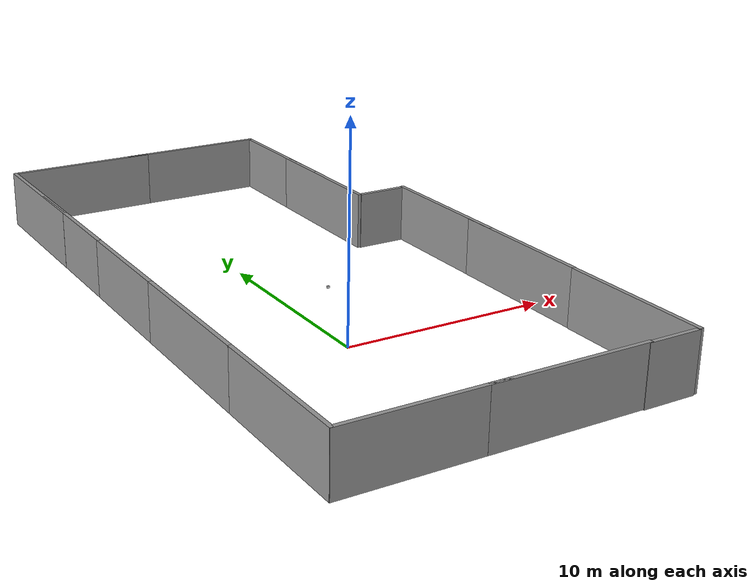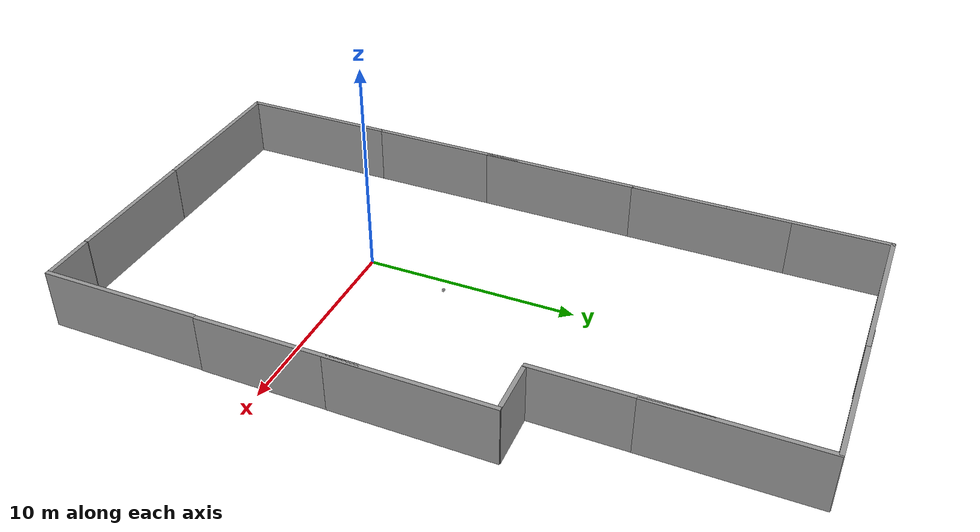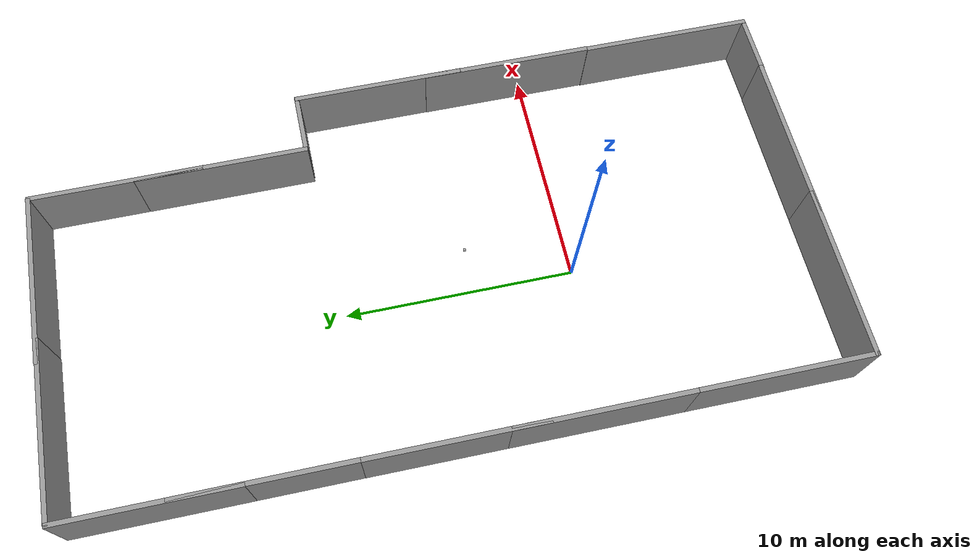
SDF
<sdf version="1.7">
 <world name="default">
  <gravity>0 0 -9.8</gravity>
  <physics name="default_physics" default="0" type="ode">
   <max_step_size>0.001</max_step_size>
   <real_time_factor>1</real_time_factor>
   <real_time_update_rate>1000</real_time_update_rate>
  </physics>
  <plugin name="box_spawner_plugin" filename="libbox_spawner_plugin.so"/>
  <plugin name="attach_detach_plugin" filename="libattach_detach.so"/>
  <light name="Warehouse_CeilingLight_003" type="point">
   <pose>0 0 9 0 -0 0</pose>
   <diffuse>0.5 0.5 0.5 1</diffuse>
   <specular>0.2 0.2 0.2 1</specular>
   <attenuation>
    <range>80</range>
    <constant>0.3</constant>
    <linear>0.01</linear>
    <quadratic>0.001</quadratic>
   </attenuation>
   <direction>0.1 0.1 -1</direction>
   <spot><inner_angle>0</inner_angle><outer_angle>0</outer_angle><falloff>0</falloff></spot>
  </light>
  <magnetic_field>6e-06 2.3e-05 -4.2e-05</magnetic_field>
  <atmosphere type="adiabatic"/>
  <scene><ambient>0.4 0.4 0.4 1</ambient><background>0.7 0.7 0.7 1</background><shadows>1</shadows></scene>
  <audio><device>default</device></audio>
  <spherical_coordinates>
   <surface_model>EARTH_WGS84</surface_model>
   <latitude_deg>0</latitude_deg>
   <longitude_deg>0</longitude_deg>
   <elevation>0</elevation>
   <heading_deg>0</heading_deg>
  </spherical_coordinates>
  <model name="grey_wall_0">
   <static>1</static>
   <link name="link">
    <pose>0 0 1.4 0 -0 0</pose>
    <collision name="collision"><geometry><box><size>7.5 0.2 2.8</size></box></geometry></collision>
    <visual name="visual">
     <cast_shadows>0</cast_shadows>
     <geometry><box><size>7.5 0.2 2.8</size></box></geometry>
     <material>
      <script>
       <uri>model://grey_wall/materials/scripts</uri>
       <uri>model://grey_wall/materials/textures</uri>
       <name>vrc/grey_wall</name>
      </script>
     </material>
    </visual>
   </link>
   <pose>9.46506 -6.66729 0 0 0 -1.57228</pose>
  </model>
  <model name="grey_wall_0_clone">
   <static>1</static>
   <link name="link">
    <pose>0 0 1.4 0 -0 0</pose>
    <collision name="collision"><geometry><box><size>7.5 0.2 2.8</size></box></geometry></collision>
    <visual name="visual">
     <cast_shadows>0</cast_shadows>
     <geometry><box><size>7.5 0.2 2.8</size></box></geometry>
     <material>
      <script>
       <uri>model://grey_wall/materials/scripts</uri>
       <uri>model://grey_wall/materials/textures</uri>
       <name>vrc/grey_wall</name>
      </script>
     </material>
    </visual>
   </link>
   <pose>9.50251 0.819731 0 0 0 -1.57228</pose>
  </model>
  <model name="grey_wall_0_clone_0">
   <static>1</static>
   <link name="link">
    <pose>0 0 1.4 0 -0 0</pose>
    <collision name="collision"><geometry><box><size>7.5 0.2 2.8</size></box></geometry></collision>
    <visual name="visual">
     <cast_shadows>0</cast_shadows>
     <geometry><box><size>7.5 0.2 2.8</size></box></geometry>
     <material>
      <script>
       <uri>model://grey_wall/materials/scripts</uri>
       <uri>model://grey_wall/materials/textures</uri>
       <name>vrc/grey_wall</name>
      </script>
     </material>
    </visual>
   </link>
   <pose>9.52214 6.71138 0 0 0 -1.57228</pose>
  </model>
  <model name="grey_wall_clone">
   <static>1</static>
   <link name="link">
    <pose>0 0 1.4 0 -0 0</pose>
    <collision name="collision"><geometry><box><size>7.5 0.2 2.8</size></box></geometry></collision>
    <visual name="visual">
     <cast_shadows>0</cast_shadows>
     <geometry><box><size>7.5 0.2 2.8</size></box></geometry>
     <material>
      <script>
       <uri>model://grey_wall/materials/scripts</uri>
       <uri>model://grey_wall/materials/textures</uri>
       <name>vrc/grey_wall</name>
      </script>
     </material>
    </visual>
   </link>
   <pose>3.20261 22.2565 0 0 -0 0</pose>
  </model>
  <model name="grey_wall_clone_0">
   <static>1</static>
   <link name="link">
    <pose>0 0 1.4 0 -0 0</pose>
    <collision name="collision"><geometry><box><size>7.5 0.2 2.8</size></box></geometry></collision>
    <visual name="visual">
     <cast_shadows>0</cast_shadows>
     <geometry><box><size>7.5 0.2 2.8</size></box></geometry>
     <material>
      <script>
       <uri>model://grey_wall/materials/scripts</uri>
       <uri>model://grey_wall/materials/textures</uri>
       <name>vrc/grey_wall</name>
      </script>
     </material>
    </visual>
   </link>
   <pose>-3.18617 22.2381 0 0 -0 0</pose>
  </model>
  <model name="grey_wall_clone_1">
   <static>1</static>
   <link name="link">
    <pose>0 0 1.4 0 -0 0</pose>
    <collision name="collision"><geometry><box><size>7.5 0.2 2.8</size></box></geometry></collision>
    <visual name="visual">
     <cast_shadows>0</cast_shadows>
     <geometry><box><size>7.5 0.2 2.8</size></box></geometry>
     <material>
      <script>
       <uri>model://grey_wall/materials/scripts</uri>
       <uri>model://grey_wall/materials/textures</uri>
       <name>vrc/grey_wall</name>
      </script>
     </material>
    </visual>
   </link>
   <pose>3.23489 -10.3239 0 0 -0 0</pose>
  </model>
  <model name="grey_wall_clone_2">
   <static>1</static>
   <link name="link">
    <pose>0 0 1.4 0 -0 0</pose>
    <collision name="collision"><geometry><box><size>7.5 0.2 2.8</size></box></geometry></collision>
    <visual name="visual">
     <cast_shadows>0</cast_shadows>
     <geometry><box><size>7.5 0.2 2.8</size></box></geometry>
     <material>
      <script>
       <uri>model://grey_wall/materials/scripts</uri>
       <uri>model://grey_wall/materials/textures</uri>
       <name>vrc/grey_wall</name>
      </script>
     </material>
    </visual>
   </link>
   <pose>-3.27808 -10.3208 0 0 -0 0</pose>
  </model>
  <model name="grey_wall_0_clone_1">
   <static>1</static>
   <link name="link">
    <pose>0 0 1.4 0 -0 0</pose>
    <collision name="collision"><geometry><box><size>7.5 0.2 2.8</size></box></geometry></collision>
    <visual name="visual">
     <cast_shadows>0</cast_shadows>
     <geometry><box><size>7.5 0.2 2.8</size></box></geometry>
     <material>
      <script>
       <uri>model://grey_wall/materials/scripts</uri>
       <uri>model://grey_wall/materials/textures</uri>
       <name>vrc/grey_wall</name>
      </script>
     </material>
    </visual>
   </link>
   <pose>-6.93259 -6.6497 0 0 0 -1.57228</pose>
  </model>
  <model name="grey_wall_0_clone_2">
   <static>1</static>
   <link name="link">
    <pose>0 0 1.4 0 -0 0</pose>
    <collision name="collision"><geometry><box><size>7.5 0.2 2.8</size></box></geometry></collision>
    <visual name="visual">
     <cast_shadows>0</cast_shadows>
     <geometry><box><size>7.5 0.2 2.8</size></box></geometry>
     <material>
      <script>
       <uri>model://grey_wall/materials/scripts</uri>
       <uri>model://grey_wall/materials/textures</uri>
       <name>vrc/grey_wall</name>
      </script>
     </material>
    </visual>
   </link>
   <pose>-6.9218 0.784813 0 0 0 -1.57228</pose>
  </model>
  <model name="grey_wall_0_clone_3">
   <static>1</static>
   <link name="link">
    <pose>0 0 1.4 0 -0 0</pose>
    <collision name="collision"><geometry><box><size>7.5 0.2 2.8</size></box></geometry></collision>
    <visual name="visual">
     <cast_shadows>0</cast_shadows>
     <geometry><box><size>7.5 0.2 2.8</size></box></geometry>
     <material>
      <script>
       <uri>model://grey_wall/materials/scripts</uri>
       <uri>model://grey_wall/materials/textures</uri>
       <name>vrc/grey_wall</name>
      </script>
     </material>
    </visual>
   </link>
   <pose>-6.91099 6.67572 0 0 0 -1.57228</pose>
  </model>
  <light name="Warehouse_CeilingLight_003_clone" type="point">
   <pose>-0.883526 26.9964 9 0 -0 0</pose>
   <diffuse>0.5 0.5 0.5 1</diffuse>
   <specular>0.2 0.2 0.2 1</specular>
   <direction>0.099015 0.099015 -0.990148</direction>
   <attenuation>
    <range>80</range>
    <constant>0.3</constant>
    <linear>0.01</linear>
    <quadratic>0.001</quadratic>
   </attenuation>
   <spot><inner_angle>0</inner_angle><outer_angle>0</outer_angle><falloff>0</falloff></spot>
  </light>
  <model name="grey_wall_clone_clone">
   <static>1</static>
   <link name="link">
    <pose>0 0 1.4 0 -0 0</pose>
    <collision name="collision"><geometry><box><size>7.5 0.2 2.8</size></box></geometry></collision>
    <visual name="visual">
     <cast_shadows>0</cast_shadows>
     <geometry><box><size>7.5 0.2 2.8</size></box></geometry>
     <material>
      <script>
       <uri>model://grey_wall/materials/scripts</uri>
       <uri>model://grey_wall/materials/textures</uri>
       <name>vrc/grey_wall</name>
      </script>
     </material>
    </visual>
   </link>
   <pose>6.92087 14.0395 0 0 -0 1.5708</pose>
  </model>
  <model name="grey_wall_clone_clone_clone">
   <static>1</static>
   <link name="link">
    <pose>0 0 1.4 0 -0 0</pose>
    <collision name="collision"><geometry><box><size>7.5 0.2 2.8</size></box></geometry></collision>
    <visual name="visual">
     <cast_shadows>0</cast_shadows>
     <geometry><box><size>7.5 0.2 2.8</size></box></geometry>
     <material>
      <script>
       <uri>model://grey_wall/materials/scripts</uri>
       <uri>model://grey_wall/materials/textures</uri>
       <name>vrc/grey_wall</name>
      </script>
     </material>
    </visual>
   </link>
   <pose>6.92651 18.5783 0 0 -0 1.5708</pose>
  </model>
  <model name="grey_wall_clone_clone_clone_0">
   <static>1</static>
   <link name="link">
    <pose>0 0 1.4 0 -0 0</pose>
    <collision name="collision"><geometry><box><size>7.5 0.2 2.8</size></box></geometry></collision>
    <visual name="visual">
     <cast_shadows>0</cast_shadows>
     <geometry><box><size>7.5 0.2 2.8</size></box></geometry>
     <material>
      <script>
       <uri>model://grey_wall/materials/scripts</uri>
       <uri>model://grey_wall/materials/textures</uri>
       <name>vrc/grey_wall</name>
      </script>
     </material>
    </visual>
   </link>
   <pose>-6.90164 14.0783 0 0 -0 1.5708</pose>
  </model>
  <model name="grey_wall_clone_clone_clone_1">
   <static>1</static>
   <link name="link">
    <pose>0 0 1.4 0 -0 0</pose>
    <collision name="collision"><geometry><box><size>7.5 0.2 2.8</size></box></geometry></collision>
    <visual name="visual">
     <cast_shadows>0</cast_shadows>
     <geometry><box><size>7.5 0.2 2.8</size></box></geometry>
     <material>
      <script>
       <uri>model://grey_wall/materials/scripts</uri>
       <uri>model://grey_wall/materials/textures</uri>
       <name>vrc/grey_wall</name>
      </script>
     </material>
    </visual>
   </link>
   <pose>-6.90394 18.5733 0 0 -0 1.5708</pose>
  </model>
  <model name="grey_wall_clone_4_clone_0_clone_clone_0_clone">
   <link name="link">
    <pose>2.30599 -0.1067 1.34342 0 -0 0</pose>
    <inertial>
     <inertia><ixx>0</ixx><ixy>0</ixy><ixz>0</ixz><iyy>0</iyy><iyz>0</iyz><izz>0</izz></inertia>
     <mass>0</mass>
    </inertial>
    <visual name="visual">
     <cast_shadows>0</cast_shadows>
     <geometry><box><size>2.59266 0.2 2.8</size></box></geometry>
     <material>
      <script>
       <uri>model://grey_wall/materials/scripts</uri>
       <uri>model://grey_wall/materials/textures</uri>
       <name>vrc/grey_wall</name>
      </script>
      <shader type="pixel"/>
     </material>
    </visual>
    <collision name="collision">
     <geometry><box><size>2.59266 0.2 2.8</size></box></geometry>
     <surface>
      <friction>
       <ode><mu>1</mu><mu2>1</mu2><fdir1>0 0 0</fdir1><slip1>0</slip1><slip2>0</slip2></ode>
       <torsional>
        <coefficient>1</coefficient>
        <patch_radius>0</patch_radius>
        <surface_radius>0</surface_radius>
        <use_patch_radius>1</use_patch_radius>
        <ode><slip>0</slip></ode>
       </torsional>
      </friction>
      <bounce><restitution_coefficient>0</restitution_coefficient><threshold>1e+06</threshold></bounce>
      <contact>
       <collide_without_contact>0</collide_without_contact>
       <collide_without_contact_bitmask>1</collide_without_contact_bitmask>
       <collide_bitmask>1</collide_bitmask>
       <ode>
        <soft_cfm>0</soft_cfm>
        <soft_erp>0.2</soft_erp>
        <kp>1e+13</kp>
        <kd>1</kd>
        <max_vel>0.01</max_vel>
        <min_depth>0</min_depth>
       </ode>
       <bullet>
        <split_impulse>1</split_impulse>
        <split_impulse_penetration_threshold>-0.01</split_impulse_penetration_threshold>
        <soft_cfm>0</soft_cfm>
        <soft_erp>0.2</soft_erp>
        <kp>1e+13</kp>
        <kd>1</kd>
       </bullet>
      </contact>
     </surface>
    </collision>
   </link>
   <static>1</static>
   <pose>10.5809 10.2799 0.034182 -0.00016 -0.001523 -3.13547</pose>
  </model>
  <model name="grey_wall_clone_4_clone_0_clone_clone_0_clone_clone">
   <link name="link">
    <pose>2.30599 -0.1067 1.34342 0 -0 0</pose>
    <inertial>
     <inertia><ixx>0</ixx><ixy>0</ixy><ixz>0</ixz><iyy>0</iyy><iyz>0</iyz><izz>0</izz></inertia>
     <mass>0</mass>
    </inertial>
    <visual name="visual">
     <cast_shadows>0</cast_shadows>
     <geometry><box><size>2.59266 0.2 2.8</size></box></geometry>
     <material>
      <script>
       <uri>model://grey_wall/materials/scripts</uri>
       <uri>model://grey_wall/materials/textures</uri>
       <name>vrc/grey_wall</name>
      </script>
      <shader type="pixel"/>
     </material>
    </visual>
    <collision name="collision">
     <geometry><box><size>2.59266 0.2 2.8</size></box></geometry>
     <surface>
      <friction>
       <ode><mu>1</mu><mu2>1</mu2><fdir1>0 0 0</fdir1><slip1>0</slip1><slip2>0</slip2></ode>
       <torsional>
        <coefficient>1</coefficient>
        <patch_radius>0</patch_radius>
        <surface_radius>0</surface_radius>
        <use_patch_radius>1</use_patch_radius>
        <ode><slip>0</slip></ode>
       </torsional>
      </friction>
      <bounce><restitution_coefficient>0</restitution_coefficient><threshold>1e+06</threshold></bounce>
      <contact>
       <collide_without_contact>0</collide_without_contact>
       <collide_without_contact_bitmask>1</collide_without_contact_bitmask>
       <collide_bitmask>1</collide_bitmask>
       <ode>
        <soft_cfm>0</soft_cfm>
        <soft_erp>0.2</soft_erp>
        <kp>1e+13</kp>
        <kd>1</kd>
        <max_vel>0.01</max_vel>
        <min_depth>0</min_depth>
       </ode>
       <bullet>
        <split_impulse>1</split_impulse>
        <split_impulse_penetration_threshold>-0.01</split_impulse_penetration_threshold>
        <soft_cfm>0</soft_cfm>
        <soft_erp>0.2</soft_erp>
        <kp>1e+13</kp>
        <kd>1</kd>
       </bullet>
      </contact>
     </surface>
    </collision>
   </link>
   <static>1</static>
   <pose>10.419 -10.4366 0.034182 -0.00016 -0.001523 -3.13547</pose>
  </model>
  <model name="aruco_box">
   <link name="link_0">
    <inertial>
     <mass>5</mass>
     <inertia>
      <ixx>0.166667</ixx>
      <ixy>0</ixy>
      <ixz>0</ixz>
      <iyy>0.166667</iyy>
      <iyz>0</iyz>
      <izz>0.166667</izz>
     </inertia>
    </inertial>
    <visual name="visual">
     <geometry><mesh><uri>model://aruco_box/meshes/box_0p2x0p2x0p2.dae</uri><scale>1 1 1</scale></mesh></geometry>
     <material>
      <shader type="pixel"><normal_map>__default__</normal_map></shader>
      <emissive>0 0 0 1</emissive>
     </material>
    </visual>
    <collision name="collision">
     <geometry><mesh><uri>model://aruco_box/meshes/box_0p2x0p2x0p2.dae</uri><scale>1 1 1</scale></mesh></geometry>
    </collision>
   </link>
   <static>0</static>
   <pose>1.66216 4.46104 0.881517 -1.57145 -0.005368 -0.002343</pose>
  </model>
 </world>
</sdf>
